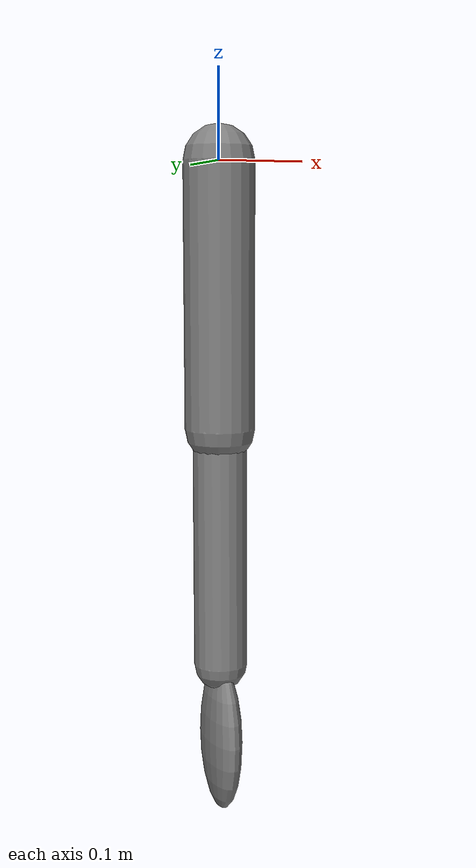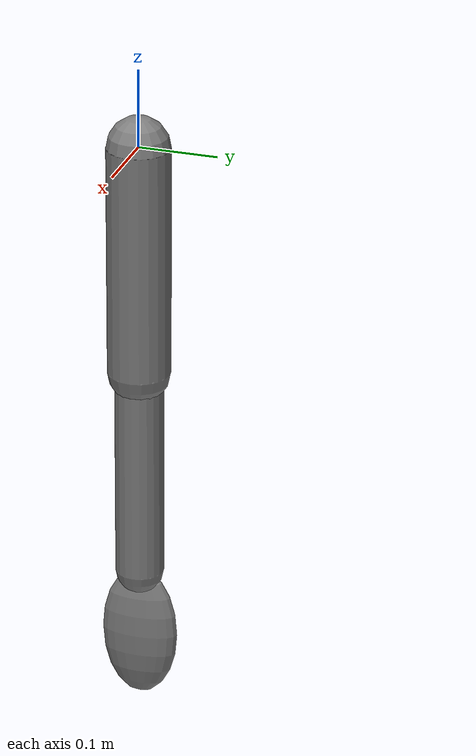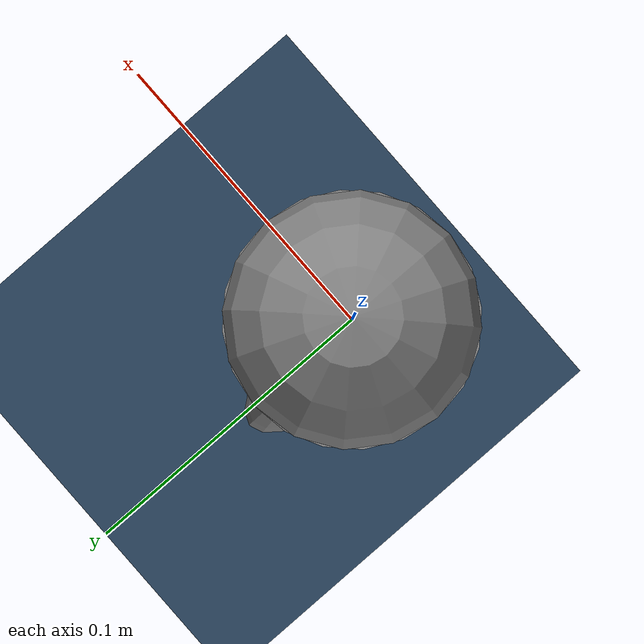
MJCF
<mujoco model="Arms">
    <asset>
        <texture name="grid" type="2d" builtin="checker" width="256" height="256" rgb1=".1 .2 .3" rgb2=".2 .3 .4"/>
        <material name="grid" texture="grid" texrepeat="2 2" texuniform="true" reflectance=".2"/>
      </asset>

    <default>
        <geom type="capsule"/>
        <joint type="hinge" limited="true" group="1"/>
    </default>

    <worldbody>
        <geom name="Floor" pos="0 0 -1.3" size="0 0 .05" type="plane" material="grid" condim="3"/>
        <light name="Spotlight" mode="fixed" pos="0 0 10" castshadow="false"/>

        <!-- Right upper arm -->
        <body name="right_upper_arm">
            <joint name="right_shoulder_abduction_adduction" axis="0 -1 0" range="0 90"/>
            <joint name="right_shoulder_flexion_extension" axis="1 0 0" range="-10 90"/>
            <joint name="right_shoulder_internal_external_rotation" axis="0 0 1" range="-15 70"/>
            <geom name="right_upper_arm" size="0.04 0.15" pos="0 0 -0.15" mass="3.0"/>

            <!-- Right lower arm -->
            <body name="right_lower_arm" pos="0 0 -0.30">
                <joint name="right_elbow_flexion_extension" axis="1 0 0" range="0 105"/>
                <geom name="right_lower_arm" size="0.031 0.14" pos="0 0 -0.14" mass="2.0"/>

                <!-- Right hand -->
                <body name="right_hand" pos="0 0 -0.28">
                    <joint name="right_forearm_pronation_supination" axis="0 0 1" range="-40 70"/>
                    <joint name="right_wrist_extension_flexion" axis="0 -1 0" range="-30 45"/>
                    <joint name="right_wrist_radial_ulnar_deviation" axis="1 0 0" range="-30 30"/>
                    <geom name="right_hand" type="ellipsoid" size="0.02 0.05 0.09" pos="0 0 -0.09" mass="0.6"/>
                </body>
            </body>
        </body>

    </worldbody>

    <actuator>
        <motor name="right_shoulder_abduction_adduction"        joint="right_shoulder_abduction_adduction"/>
        <motor name="right_shoulder_flexion_extension"          joint="right_shoulder_flexion_extension"/>
        <motor name="right_shoulder_internal_external_rotation" joint="right_shoulder_internal_external_rotation"/>
        <motor name="right_elbow_flexion_extension"             joint="right_elbow_flexion_extension"/>
        <motor name="right_forearm_pronation_supination"        joint="right_forearm_pronation_supination"/>
        <motor name="right_wrist_extension_flexion"             joint="right_wrist_extension_flexion"/>
        <motor name="right_wrist_radial_ulnar_deviation"        joint="right_wrist_radial_ulnar_deviation"/>
    </actuator>
</mujoco>
